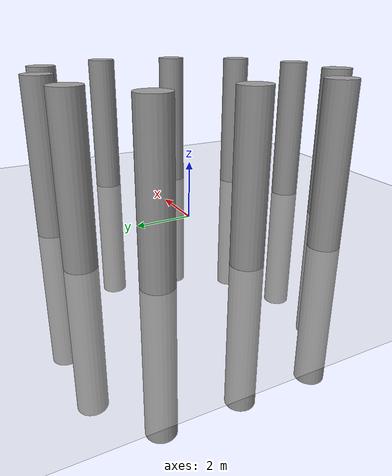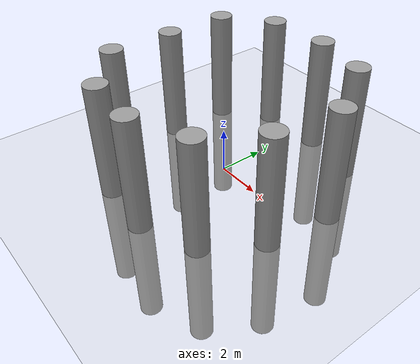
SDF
<sdf version="1.7">
 <world name="default">
  <light name="sun" type="directional">
   <pose>0 0 10 0 -0 0</pose>
   <diffuse>0.8 0.8 0.8 1</diffuse>
   <specular>0.2 0.2 0.2 1</specular>
   <attenuation>
    <range>1000</range>
    <constant>0.9</constant>
    <linear>0.01</linear>
    <quadratic>0.001</quadratic>
   </attenuation>
   <direction>-0.5 0.1 -0.9</direction>
   <spot><inner_angle>0</inner_angle><outer_angle>0</outer_angle><falloff>0</falloff></spot>
  </light>
  <model name="ground_plane">
   <static>1</static>
   <link name="link">
    <collision name="collision">
     <geometry><plane><normal>0 0 1</normal><size>100 100</size></plane></geometry>
     <surface>
      <contact><collide_bitmask>65535</collide_bitmask></contact>
      <friction><ode><mu>100</mu><mu2>50</mu2></ode></friction>
     </surface>
    </collision>
    <visual name="visual">
     <cast_shadows>0</cast_shadows>
     <geometry><plane><normal>0 0 1</normal><size>100 100</size></plane></geometry>
     <material>
      <script><uri>file://media/materials/scripts/gazebo.material</uri><name>Gazebo/Grey</name></script>
     </material>
    </visual>
   </link>
  </model>
  <gravity>0 0 -9.8</gravity>
  <magnetic_field>6e-06 2.3e-05 -4.2e-05</magnetic_field>
  <atmosphere type="adiabatic"/>
  <physics type="ode">
   <max_step_size>0.001</max_step_size>
   <real_time_factor>1</real_time_factor>
   <real_time_update_rate>1000</real_time_update_rate>
  </physics>
  <scene><ambient>0.4 0.4 0.4 1</ambient><background>0.7 0.7 0.7 1</background><shadows>1</shadows></scene>
  <spherical_coordinates>
   <surface_model>EARTH_WGS84</surface_model>
   <latitude_deg>0</latitude_deg>
   <longitude_deg>0</longitude_deg>
   <elevation>0</elevation>
   <heading_deg>0</heading_deg>
  </spherical_coordinates>
  <model name="long_cylinder">
   <link name="link">
    <inertial>
     <mass>1</mass>
     <inertia><ixx>0.145833</ixx><ixy>0</ixy><ixz>0</ixz><iyy>0.145833</iyy><iyz>0</iyz><izz>0.125</izz></inertia>
    </inertial>
    <visual name="visual">
     <geometry><cylinder><radius>0.5</radius><length>10.17</length></cylinder></geometry>
     <material>
      <script><name>Gazebo/Grey</name><uri>file://media/materials/scripts/gazebo.material</uri></script>
      <shader type="pixel"><normal_map>__default__</normal_map></shader>
      <ambient>0.3 0.3 0.3 1</ambient>
      <diffuse>0.7 0.7 0.7 1</diffuse>
      <specular>0.01 0.01 0.01 1</specular>
      <emissive>0 0 0 1</emissive>
     </material>
    </visual>
    <collision name="collision">
     <geometry><cylinder><radius>0.5</radius><length>10.13</length></cylinder></geometry>
     <surface>
      <friction>
       <ode><mu>1</mu><mu2>1</mu2><fdir1>0 0 0</fdir1><slip1>0</slip1><slip2>0</slip2></ode>
       <torsional>
        <coefficient>1</coefficient>
        <patch_radius>0</patch_radius>
        <surface_radius>0</surface_radius>
        <use_patch_radius>1</use_patch_radius>
        <ode><slip>0</slip></ode>
       </torsional>
      </friction>
      <bounce><restitution_coefficient>0</restitution_coefficient><threshold>1e+06</threshold></bounce>
      <contact>
       <collide_without_contact>0</collide_without_contact>
       <collide_without_contact_bitmask>1</collide_without_contact_bitmask>
       <collide_bitmask>1</collide_bitmask>
       <ode>
        <soft_cfm>0</soft_cfm>
        <soft_erp>0.2</soft_erp>
        <kp>1e+13</kp>
        <kd>1</kd>
        <max_vel>0.01</max_vel>
        <min_depth>0</min_depth>
       </ode>
       <bullet>
        <split_impulse>1</split_impulse>
        <split_impulse_penetration_threshold>-0.01</split_impulse_penetration_threshold>
        <soft_cfm>0</soft_cfm>
        <soft_erp>0.2</soft_erp>
        <kp>1e+13</kp>
        <kd>1</kd>
       </bullet>
      </contact>
     </surface>
    </collision>
   </link>
   <static>0</static>
   <pose>-3.96677 0.177457 0 0 -0 0</pose>
  </model>
  <model name="long_cylinder_0">
   <link name="link">
    <inertial>
     <mass>1</mass>
     <inertia><ixx>0.145833</ixx><ixy>0</ixy><ixz>0</ixz><iyy>0.145833</iyy><iyz>0</iyz><izz>0.125</izz></inertia>
    </inertial>
    <visual name="visual">
     <geometry><cylinder><radius>0.5</radius><length>10.17</length></cylinder></geometry>
     <material>
      <script><name>Gazebo/Grey</name><uri>file://media/materials/scripts/gazebo.material</uri></script>
      <shader type="pixel"><normal_map>__default__</normal_map></shader>
      <ambient>0.3 0.3 0.3 1</ambient>
      <diffuse>0.7 0.7 0.7 1</diffuse>
      <specular>0.01 0.01 0.01 1</specular>
      <emissive>0 0 0 1</emissive>
     </material>
    </visual>
    <collision name="collision">
     <geometry><cylinder><radius>0.5</radius><length>10.13</length></cylinder></geometry>
     <surface>
      <friction>
       <ode><mu>1</mu><mu2>1</mu2><fdir1>0 0 0</fdir1><slip1>0</slip1><slip2>0</slip2></ode>
       <torsional>
        <coefficient>1</coefficient>
        <patch_radius>0</patch_radius>
        <surface_radius>0</surface_radius>
        <use_patch_radius>1</use_patch_radius>
        <ode><slip>0</slip></ode>
       </torsional>
      </friction>
      <bounce><restitution_coefficient>0</restitution_coefficient><threshold>1e+06</threshold></bounce>
      <contact>
       <collide_without_contact>0</collide_without_contact>
       <collide_without_contact_bitmask>1</collide_without_contact_bitmask>
       <collide_bitmask>1</collide_bitmask>
       <ode>
        <soft_cfm>0</soft_cfm>
        <soft_erp>0.2</soft_erp>
        <kp>1e+13</kp>
        <kd>1</kd>
        <max_vel>0.01</max_vel>
        <min_depth>0</min_depth>
       </ode>
       <bullet>
        <split_impulse>1</split_impulse>
        <split_impulse_penetration_threshold>-0.01</split_impulse_penetration_threshold>
        <soft_cfm>0</soft_cfm>
        <soft_erp>0.2</soft_erp>
        <kp>1e+13</kp>
        <kd>1</kd>
       </bullet>
      </contact>
     </surface>
    </collision>
   </link>
   <static>0</static>
   <pose>-3.97142 3.01012 0 0 -0 0</pose>
  </model>
  <model name="long_cylinder_1">
   <link name="link">
    <inertial>
     <mass>1</mass>
     <inertia><ixx>0.145833</ixx><ixy>0</ixy><ixz>0</ixz><iyy>0.145833</iyy><iyz>0</iyz><izz>0.125</izz></inertia>
    </inertial>
    <visual name="visual">
     <geometry><cylinder><radius>0.5</radius><length>10.17</length></cylinder></geometry>
     <material>
      <script><name>Gazebo/Grey</name><uri>file://media/materials/scripts/gazebo.material</uri></script>
      <shader type="pixel"><normal_map>__default__</normal_map></shader>
      <ambient>0.3 0.3 0.3 1</ambient>
      <diffuse>0.7 0.7 0.7 1</diffuse>
      <specular>0.01 0.01 0.01 1</specular>
      <emissive>0 0 0 1</emissive>
     </material>
    </visual>
    <collision name="collision">
     <geometry><cylinder><radius>0.5</radius><length>10.13</length></cylinder></geometry>
     <surface>
      <friction>
       <ode><mu>1</mu><mu2>1</mu2><fdir1>0 0 0</fdir1><slip1>0</slip1><slip2>0</slip2></ode>
       <torsional>
        <coefficient>1</coefficient>
        <patch_radius>0</patch_radius>
        <surface_radius>0</surface_radius>
        <use_patch_radius>1</use_patch_radius>
        <ode><slip>0</slip></ode>
       </torsional>
      </friction>
      <bounce><restitution_coefficient>0</restitution_coefficient><threshold>1e+06</threshold></bounce>
      <contact>
       <collide_without_contact>0</collide_without_contact>
       <collide_without_contact_bitmask>1</collide_without_contact_bitmask>
       <collide_bitmask>1</collide_bitmask>
       <ode>
        <soft_cfm>0</soft_cfm>
        <soft_erp>0.2</soft_erp>
        <kp>1e+13</kp>
        <kd>1</kd>
        <max_vel>0.01</max_vel>
        <min_depth>0</min_depth>
       </ode>
       <bullet>
        <split_impulse>1</split_impulse>
        <split_impulse_penetration_threshold>-0.01</split_impulse_penetration_threshold>
        <soft_cfm>0</soft_cfm>
        <soft_erp>0.2</soft_erp>
        <kp>1e+13</kp>
        <kd>1</kd>
       </bullet>
      </contact>
     </surface>
    </collision>
   </link>
   <static>0</static>
   <pose>-1.94923 4.52975 0 0 -0 0</pose>
  </model>
  <model name="long_cylinder_2">
   <link name="link">
    <inertial>
     <mass>1</mass>
     <inertia><ixx>0.145833</ixx><ixy>0</ixy><ixz>0</ixz><iyy>0.145833</iyy><iyz>0</iyz><izz>0.125</izz></inertia>
    </inertial>
    <visual name="visual">
     <geometry><cylinder><radius>0.5</radius><length>10.17</length></cylinder></geometry>
     <material>
      <script><name>Gazebo/Grey</name><uri>file://media/materials/scripts/gazebo.material</uri></script>
      <shader type="pixel"><normal_map>__default__</normal_map></shader>
      <ambient>0.3 0.3 0.3 1</ambient>
      <diffuse>0.7 0.7 0.7 1</diffuse>
      <specular>0.01 0.01 0.01 1</specular>
      <emissive>0 0 0 1</emissive>
     </material>
    </visual>
    <collision name="collision">
     <geometry><cylinder><radius>0.5</radius><length>10.13</length></cylinder></geometry>
     <surface>
      <friction>
       <ode><mu>1</mu><mu2>1</mu2><fdir1>0 0 0</fdir1><slip1>0</slip1><slip2>0</slip2></ode>
       <torsional>
        <coefficient>1</coefficient>
        <patch_radius>0</patch_radius>
        <surface_radius>0</surface_radius>
        <use_patch_radius>1</use_patch_radius>
        <ode><slip>0</slip></ode>
       </torsional>
      </friction>
      <bounce><restitution_coefficient>0</restitution_coefficient><threshold>1e+06</threshold></bounce>
      <contact>
       <collide_without_contact>0</collide_without_contact>
       <collide_without_contact_bitmask>1</collide_without_contact_bitmask>
       <collide_bitmask>1</collide_bitmask>
       <ode>
        <soft_cfm>0</soft_cfm>
        <soft_erp>0.2</soft_erp>
        <kp>1e+13</kp>
        <kd>1</kd>
        <max_vel>0.01</max_vel>
        <min_depth>0</min_depth>
       </ode>
       <bullet>
        <split_impulse>1</split_impulse>
        <split_impulse_penetration_threshold>-0.01</split_impulse_penetration_threshold>
        <soft_cfm>0</soft_cfm>
        <soft_erp>0.2</soft_erp>
        <kp>1e+13</kp>
        <kd>1</kd>
       </bullet>
      </contact>
     </surface>
    </collision>
   </link>
   <static>0</static>
   <pose>0.87406 4.64738 0 0 -0 0</pose>
  </model>
  <model name="long_cylinder_3">
   <link name="link">
    <inertial>
     <mass>1</mass>
     <inertia><ixx>0.145833</ixx><ixy>0</ixy><ixz>0</ixz><iyy>0.145833</iyy><iyz>0</iyz><izz>0.125</izz></inertia>
    </inertial>
    <visual name="visual">
     <geometry><cylinder><radius>0.5</radius><length>10.17</length></cylinder></geometry>
     <material>
      <script><name>Gazebo/Grey</name><uri>file://media/materials/scripts/gazebo.material</uri></script>
      <shader type="pixel"><normal_map>__default__</normal_map></shader>
      <ambient>0.3 0.3 0.3 1</ambient>
      <diffuse>0.7 0.7 0.7 1</diffuse>
      <specular>0.01 0.01 0.01 1</specular>
      <emissive>0 0 0 1</emissive>
     </material>
    </visual>
    <collision name="collision">
     <geometry><cylinder><radius>0.5</radius><length>10.13</length></cylinder></geometry>
     <surface>
      <friction>
       <ode><mu>1</mu><mu2>1</mu2><fdir1>0 0 0</fdir1><slip1>0</slip1><slip2>0</slip2></ode>
       <torsional>
        <coefficient>1</coefficient>
        <patch_radius>0</patch_radius>
        <surface_radius>0</surface_radius>
        <use_patch_radius>1</use_patch_radius>
        <ode><slip>0</slip></ode>
       </torsional>
      </friction>
      <bounce><restitution_coefficient>0</restitution_coefficient><threshold>1e+06</threshold></bounce>
      <contact>
       <collide_without_contact>0</collide_without_contact>
       <collide_without_contact_bitmask>1</collide_without_contact_bitmask>
       <collide_bitmask>1</collide_bitmask>
       <ode>
        <soft_cfm>0</soft_cfm>
        <soft_erp>0.2</soft_erp>
        <kp>1e+13</kp>
        <kd>1</kd>
        <max_vel>0.01</max_vel>
        <min_depth>0</min_depth>
       </ode>
       <bullet>
        <split_impulse>1</split_impulse>
        <split_impulse_penetration_threshold>-0.01</split_impulse_penetration_threshold>
        <soft_cfm>0</soft_cfm>
        <soft_erp>0.2</soft_erp>
        <kp>1e+13</kp>
        <kd>1</kd>
       </bullet>
      </contact>
     </surface>
    </collision>
   </link>
   <static>0</static>
   <pose>3.35672 3.99107 0 0 -0 0</pose>
  </model>
  <model name="long_cylinder_4">
   <link name="link">
    <inertial>
     <mass>1</mass>
     <inertia><ixx>0.145833</ixx><ixy>0</ixy><ixz>0</ixz><iyy>0.145833</iyy><iyz>0</iyz><izz>0.125</izz></inertia>
    </inertial>
    <visual name="visual">
     <geometry><cylinder><radius>0.5</radius><length>10.17</length></cylinder></geometry>
     <material>
      <script><name>Gazebo/Grey</name><uri>file://media/materials/scripts/gazebo.material</uri></script>
      <shader type="pixel"><normal_map>__default__</normal_map></shader>
      <ambient>0.3 0.3 0.3 1</ambient>
      <diffuse>0.7 0.7 0.7 1</diffuse>
      <specular>0.01 0.01 0.01 1</specular>
      <emissive>0 0 0 1</emissive>
     </material>
    </visual>
    <collision name="collision">
     <geometry><cylinder><radius>0.5</radius><length>10.13</length></cylinder></geometry>
     <surface>
      <friction>
       <ode><mu>1</mu><mu2>1</mu2><fdir1>0 0 0</fdir1><slip1>0</slip1><slip2>0</slip2></ode>
       <torsional>
        <coefficient>1</coefficient>
        <patch_radius>0</patch_radius>
        <surface_radius>0</surface_radius>
        <use_patch_radius>1</use_patch_radius>
        <ode><slip>0</slip></ode>
       </torsional>
      </friction>
      <bounce><restitution_coefficient>0</restitution_coefficient><threshold>1e+06</threshold></bounce>
      <contact>
       <collide_without_contact>0</collide_without_contact>
       <collide_without_contact_bitmask>1</collide_without_contact_bitmask>
       <collide_bitmask>1</collide_bitmask>
       <ode>
        <soft_cfm>0</soft_cfm>
        <soft_erp>0.2</soft_erp>
        <kp>1e+13</kp>
        <kd>1</kd>
        <max_vel>0.01</max_vel>
        <min_depth>0</min_depth>
       </ode>
       <bullet>
        <split_impulse>1</split_impulse>
        <split_impulse_penetration_threshold>-0.01</split_impulse_penetration_threshold>
        <soft_cfm>0</soft_cfm>
        <soft_erp>0.2</soft_erp>
        <kp>1e+13</kp>
        <kd>1</kd>
       </bullet>
      </contact>
     </surface>
    </collision>
   </link>
   <static>0</static>
   <pose>-4.02188 -2.6632 0 0 -0 0</pose>
  </model>
  <model name="long_cylinder_5">
   <link name="link">
    <inertial>
     <mass>1</mass>
     <inertia><ixx>0.145833</ixx><ixy>0</ixy><ixz>0</ixz><iyy>0.145833</iyy><iyz>0</iyz><izz>0.125</izz></inertia>
    </inertial>
    <visual name="visual">
     <geometry><cylinder><radius>0.5</radius><length>10.17</length></cylinder></geometry>
     <material>
      <script><name>Gazebo/Grey</name><uri>file://media/materials/scripts/gazebo.material</uri></script>
      <shader type="pixel"><normal_map>__default__</normal_map></shader>
      <ambient>0.3 0.3 0.3 1</ambient>
      <diffuse>0.7 0.7 0.7 1</diffuse>
      <specular>0.01 0.01 0.01 1</specular>
      <emissive>0 0 0 1</emissive>
     </material>
    </visual>
    <collision name="collision">
     <geometry><cylinder><radius>0.5</radius><length>10.13</length></cylinder></geometry>
     <surface>
      <friction>
       <ode><mu>1</mu><mu2>1</mu2><fdir1>0 0 0</fdir1><slip1>0</slip1><slip2>0</slip2></ode>
       <torsional>
        <coefficient>1</coefficient>
        <patch_radius>0</patch_radius>
        <surface_radius>0</surface_radius>
        <use_patch_radius>1</use_patch_radius>
        <ode><slip>0</slip></ode>
       </torsional>
      </friction>
      <bounce><restitution_coefficient>0</restitution_coefficient><threshold>1e+06</threshold></bounce>
      <contact>
       <collide_without_contact>0</collide_without_contact>
       <collide_without_contact_bitmask>1</collide_without_contact_bitmask>
       <collide_bitmask>1</collide_bitmask>
       <ode>
        <soft_cfm>0</soft_cfm>
        <soft_erp>0.2</soft_erp>
        <kp>1e+13</kp>
        <kd>1</kd>
        <max_vel>0.01</max_vel>
        <min_depth>0</min_depth>
       </ode>
       <bullet>
        <split_impulse>1</split_impulse>
        <split_impulse_penetration_threshold>-0.01</split_impulse_penetration_threshold>
        <soft_cfm>0</soft_cfm>
        <soft_erp>0.2</soft_erp>
        <kp>1e+13</kp>
        <kd>1</kd>
       </bullet>
      </contact>
     </surface>
    </collision>
   </link>
   <static>0</static>
   <pose>-1.80346 -4.54394 0 0 -0 0</pose>
  </model>
  <model name="long_cylinder_6">
   <link name="link">
    <inertial>
     <mass>1</mass>
     <inertia><ixx>0.145833</ixx><ixy>0</ixy><ixz>0</ixz><iyy>0.145833</iyy><iyz>0</iyz><izz>0.125</izz></inertia>
    </inertial>
    <visual name="visual">
     <geometry><cylinder><radius>0.5</radius><length>10.17</length></cylinder></geometry>
     <material>
      <script><name>Gazebo/Grey</name><uri>file://media/materials/scripts/gazebo.material</uri></script>
      <shader type="pixel"><normal_map>__default__</normal_map></shader>
      <ambient>0.3 0.3 0.3 1</ambient>
      <diffuse>0.7 0.7 0.7 1</diffuse>
      <specular>0.01 0.01 0.01 1</specular>
      <emissive>0 0 0 1</emissive>
     </material>
    </visual>
    <collision name="collision">
     <geometry><cylinder><radius>0.5</radius><length>10.13</length></cylinder></geometry>
     <surface>
      <friction>
       <ode><mu>1</mu><mu2>1</mu2><fdir1>0 0 0</fdir1><slip1>0</slip1><slip2>0</slip2></ode>
       <torsional>
        <coefficient>1</coefficient>
        <patch_radius>0</patch_radius>
        <surface_radius>0</surface_radius>
        <use_patch_radius>1</use_patch_radius>
        <ode><slip>0</slip></ode>
       </torsional>
      </friction>
      <bounce><restitution_coefficient>0</restitution_coefficient><threshold>1e+06</threshold></bounce>
      <contact>
       <collide_without_contact>0</collide_without_contact>
       <collide_without_contact_bitmask>1</collide_without_contact_bitmask>
       <collide_bitmask>1</collide_bitmask>
       <ode>
        <soft_cfm>0</soft_cfm>
        <soft_erp>0.2</soft_erp>
        <kp>1e+13</kp>
        <kd>1</kd>
        <max_vel>0.01</max_vel>
        <min_depth>0</min_depth>
       </ode>
       <bullet>
        <split_impulse>1</split_impulse>
        <split_impulse_penetration_threshold>-0.01</split_impulse_penetration_threshold>
        <soft_cfm>0</soft_cfm>
        <soft_erp>0.2</soft_erp>
        <kp>1e+13</kp>
        <kd>1</kd>
       </bullet>
      </contact>
     </surface>
    </collision>
   </link>
   <static>0</static>
   <pose>0.707744 -4.76384 0 0 -0 0</pose>
  </model>
  <model name="long_cylinder_7">
   <link name="link">
    <inertial>
     <mass>1</mass>
     <inertia><ixx>0.145833</ixx><ixy>0</ixy><ixz>0</ixz><iyy>0.145833</iyy><iyz>0</iyz><izz>0.125</izz></inertia>
    </inertial>
    <visual name="visual">
     <geometry><cylinder><radius>0.5</radius><length>10.17</length></cylinder></geometry>
     <material>
      <script><name>Gazebo/Grey</name><uri>file://media/materials/scripts/gazebo.material</uri></script>
      <shader type="pixel"><normal_map>__default__</normal_map></shader>
      <ambient>0.3 0.3 0.3 1</ambient>
      <diffuse>0.7 0.7 0.7 1</diffuse>
      <specular>0.01 0.01 0.01 1</specular>
      <emissive>0 0 0 1</emissive>
     </material>
    </visual>
    <collision name="collision">
     <geometry><cylinder><radius>0.5</radius><length>10.13</length></cylinder></geometry>
     <surface>
      <friction>
       <ode><mu>1</mu><mu2>1</mu2><fdir1>0 0 0</fdir1><slip1>0</slip1><slip2>0</slip2></ode>
       <torsional>
        <coefficient>1</coefficient>
        <patch_radius>0</patch_radius>
        <surface_radius>0</surface_radius>
        <use_patch_radius>1</use_patch_radius>
        <ode><slip>0</slip></ode>
       </torsional>
      </friction>
      <bounce><restitution_coefficient>0</restitution_coefficient><threshold>1e+06</threshold></bounce>
      <contact>
       <collide_without_contact>0</collide_without_contact>
       <collide_without_contact_bitmask>1</collide_without_contact_bitmask>
       <collide_bitmask>1</collide_bitmask>
       <ode>
        <soft_cfm>0</soft_cfm>
        <soft_erp>0.2</soft_erp>
        <kp>1e+13</kp>
        <kd>1</kd>
        <max_vel>0.01</max_vel>
        <min_depth>0</min_depth>
       </ode>
       <bullet>
        <split_impulse>1</split_impulse>
        <split_impulse_penetration_threshold>-0.01</split_impulse_penetration_threshold>
        <soft_cfm>0</soft_cfm>
        <soft_erp>0.2</soft_erp>
        <kp>1e+13</kp>
        <kd>1</kd>
       </bullet>
      </contact>
     </surface>
    </collision>
   </link>
   <static>0</static>
   <pose>3.13273 -3.75012 0 0 -0 0</pose>
  </model>
  <model name="long_cylinder_8">
   <link name="link">
    <inertial>
     <mass>1</mass>
     <inertia><ixx>0.145833</ixx><ixy>0</ixy><ixz>0</ixz><iyy>0.145833</iyy><iyz>0</iyz><izz>0.125</izz></inertia>
    </inertial>
    <visual name="visual">
     <geometry><cylinder><radius>0.5</radius><length>10.17</length></cylinder></geometry>
     <material>
      <script><name>Gazebo/Grey</name><uri>file://media/materials/scripts/gazebo.material</uri></script>
      <shader type="pixel"><normal_map>__default__</normal_map></shader>
      <ambient>0.3 0.3 0.3 1</ambient>
      <diffuse>0.7 0.7 0.7 1</diffuse>
      <specular>0.01 0.01 0.01 1</specular>
      <emissive>0 0 0 1</emissive>
     </material>
    </visual>
    <collision name="collision">
     <geometry><cylinder><radius>0.5</radius><length>10.13</length></cylinder></geometry>
     <surface>
      <friction>
       <ode><mu>1</mu><mu2>1</mu2><fdir1>0 0 0</fdir1><slip1>0</slip1><slip2>0</slip2></ode>
       <torsional>
        <coefficient>1</coefficient>
        <patch_radius>0</patch_radius>
        <surface_radius>0</surface_radius>
        <use_patch_radius>1</use_patch_radius>
        <ode><slip>0</slip></ode>
       </torsional>
      </friction>
      <bounce><restitution_coefficient>0</restitution_coefficient><threshold>1e+06</threshold></bounce>
      <contact>
       <collide_without_contact>0</collide_without_contact>
       <collide_without_contact_bitmask>1</collide_without_contact_bitmask>
       <collide_bitmask>1</collide_bitmask>
       <ode>
        <soft_cfm>0</soft_cfm>
        <soft_erp>0.2</soft_erp>
        <kp>1e+13</kp>
        <kd>1</kd>
        <max_vel>0.01</max_vel>
        <min_depth>0</min_depth>
       </ode>
       <bullet>
        <split_impulse>1</split_impulse>
        <split_impulse_penetration_threshold>-0.01</split_impulse_penetration_threshold>
        <soft_cfm>0</soft_cfm>
        <soft_erp>0.2</soft_erp>
        <kp>1e+13</kp>
        <kd>1</kd>
       </bullet>
      </contact>
     </surface>
    </collision>
   </link>
   <static>0</static>
   <pose>4.55952 -1.52803 0 0 -0 0</pose>
  </model>
  <model name="long_cylinder_9">
   <link name="link">
    <inertial>
     <mass>1</mass>
     <inertia><ixx>0.145833</ixx><ixy>0</ixy><ixz>0</ixz><iyy>0.145833</iyy><iyz>0</iyz><izz>0.125</izz></inertia>
    </inertial>
    <visual name="visual">
     <geometry><cylinder><radius>0.5</radius><length>10.17</length></cylinder></geometry>
     <material>
      <script><name>Gazebo/Grey</name><uri>file://media/materials/scripts/gazebo.material</uri></script>
      <shader type="pixel"><normal_map>__default__</normal_map></shader>
      <ambient>0.3 0.3 0.3 1</ambient>
      <diffuse>0.7 0.7 0.7 1</diffuse>
      <specular>0.01 0.01 0.01 1</specular>
      <emissive>0 0 0 1</emissive>
     </material>
    </visual>
    <collision name="collision">
     <geometry><cylinder><radius>0.5</radius><length>10.13</length></cylinder></geometry>
     <surface>
      <friction>
       <ode><mu>1</mu><mu2>1</mu2><fdir1>0 0 0</fdir1><slip1>0</slip1><slip2>0</slip2></ode>
       <torsional>
        <coefficient>1</coefficient>
        <patch_radius>0</patch_radius>
        <surface_radius>0</surface_radius>
        <use_patch_radius>1</use_patch_radius>
        <ode><slip>0</slip></ode>
       </torsional>
      </friction>
      <bounce><restitution_coefficient>0</restitution_coefficient><threshold>1e+06</threshold></bounce>
      <contact>
       <collide_without_contact>0</collide_without_contact>
       <collide_without_contact_bitmask>1</collide_without_contact_bitmask>
       <collide_bitmask>1</collide_bitmask>
       <ode>
        <soft_cfm>0</soft_cfm>
        <soft_erp>0.2</soft_erp>
        <kp>1e+13</kp>
        <kd>1</kd>
        <max_vel>0.01</max_vel>
        <min_depth>0</min_depth>
       </ode>
       <bullet>
        <split_impulse>1</split_impulse>
        <split_impulse_penetration_threshold>-0.01</split_impulse_penetration_threshold>
        <soft_cfm>0</soft_cfm>
        <soft_erp>0.2</soft_erp>
        <kp>1e+13</kp>
        <kd>1</kd>
       </bullet>
      </contact>
     </surface>
    </collision>
   </link>
   <static>0</static>
   <pose>4.95886 1.31756 0 0 -0 0</pose>
  </model>
 </world>
</sdf>
